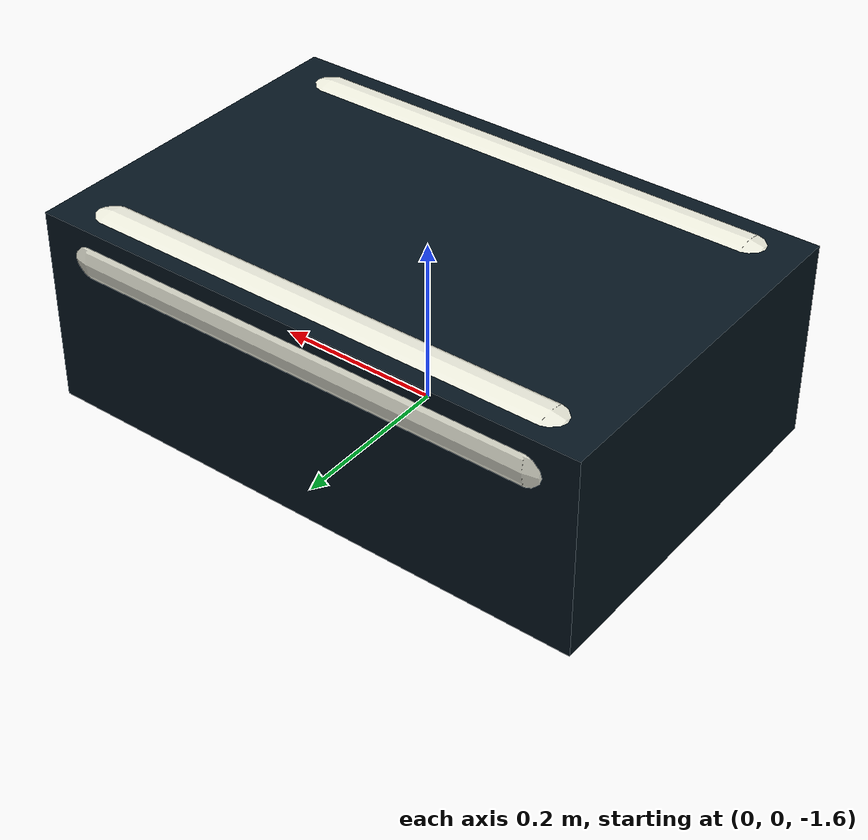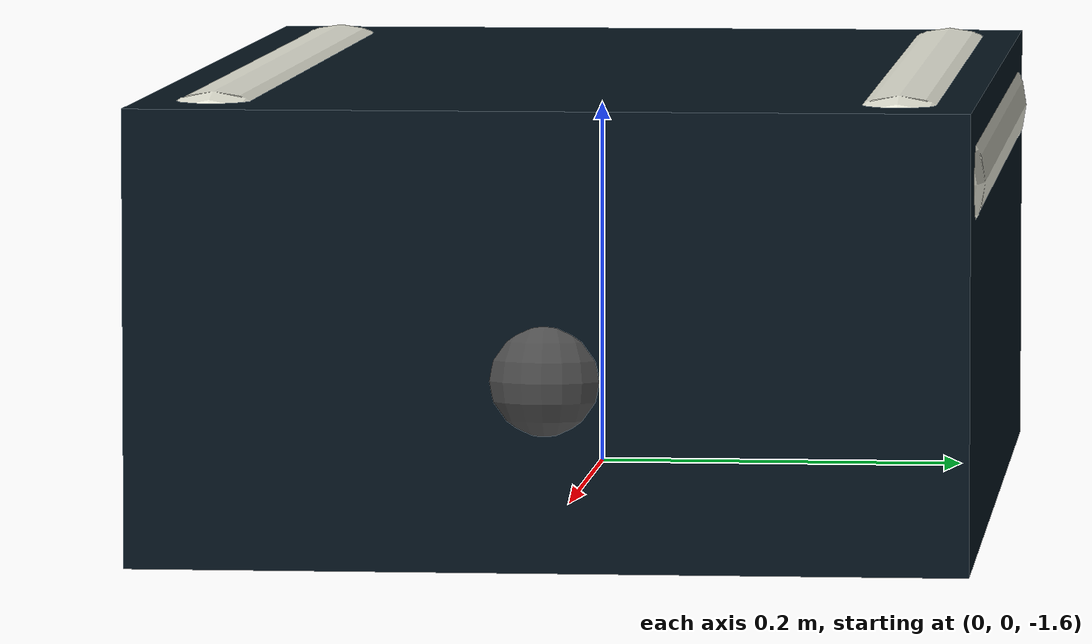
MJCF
<mujoco model="bluerov2_heavy_generic">
  <compiler angle="degree" coordinate="local"/>
  <option timestep="0.002" gravity="0 0 -9.81"/>

  <worldbody>
    <light name="top" pos="0 0 2"/>
    <geom name="water_plane" type="plane" size="5 5 0.01" pos="0 0 0" rgba="0.05 0.15 0.20 0.25"/>
    <body name="trajectory_target_marker" mocap="true" pos="0 0 -1.5">
      <geom name="trajectory_target_marker_geom" type="sphere" size="0.055" rgba="0.10 0.42 1.00 0.85" contype="0" conaffinity="0"/>
    </body>
    <body name="trajectory_actual_marker" mocap="true" pos="0 0 -1.5">
      <geom name="trajectory_actual_marker_geom" type="sphere" size="0.045" rgba="1.00 0.55 0.15 0.85" contype="0" conaffinity="0"/>
    </body>
    <!-- ROS-driven mocap dots: blue target trail, orange actual trail. -->
    <body name="trajectory_target_trail_00" mocap="true" pos="0 0 -1.5"><geom type="sphere" size="0.018" rgba="0.10 0.42 1.00 0.30" contype="0" conaffinity="0"/></body>
    <body name="trajectory_target_trail_01" mocap="true" pos="0 0 -1.5"><geom type="sphere" size="0.018" rgba="0.10 0.42 1.00 0.30" contype="0" conaffinity="0"/></body>
    <body name="trajectory_target_trail_02" mocap="true" pos="0 0 -1.5"><geom type="sphere" size="0.018" rgba="0.10 0.42 1.00 0.30" contype="0" conaffinity="0"/></body>
    <body name="trajectory_target_trail_03" mocap="true" pos="0 0 -1.5"><geom type="sphere" size="0.018" rgba="0.10 0.42 1.00 0.30" contype="0" conaffinity="0"/></body>
    <body name="trajectory_target_trail_04" mocap="true" pos="0 0 -1.5"><geom type="sphere" size="0.018" rgba="0.10 0.42 1.00 0.30" contype="0" conaffinity="0"/></body>
    <body name="trajectory_target_trail_05" mocap="true" pos="0 0 -1.5"><geom type="sphere" size="0.018" rgba="0.10 0.42 1.00 0.30" contype="0" conaffinity="0"/></body>
    <body name="trajectory_target_trail_06" mocap="true" pos="0 0 -1.5"><geom type="sphere" size="0.018" rgba="0.10 0.42 1.00 0.30" contype="0" conaffinity="0"/></body>
    <body name="trajectory_target_trail_07" mocap="true" pos="0 0 -1.5"><geom type="sphere" size="0.018" rgba="0.10 0.42 1.00 0.30" contype="0" conaffinity="0"/></body>
    <body name="trajectory_target_trail_08" mocap="true" pos="0 0 -1.5"><geom type="sphere" size="0.018" rgba="0.10 0.42 1.00 0.30" contype="0" conaffinity="0"/></body>
    <body name="trajectory_target_trail_09" mocap="true" pos="0 0 -1.5"><geom type="sphere" size="0.018" rgba="0.10 0.42 1.00 0.30" contype="0" conaffinity="0"/></body>
    <body name="trajectory_target_trail_10" mocap="true" pos="0 0 -1.5"><geom type="sphere" size="0.018" rgba="0.10 0.42 1.00 0.30" contype="0" conaffinity="0"/></body>
    <body name="trajectory_target_trail_11" mocap="true" pos="0 0 -1.5"><geom type="sphere" size="0.018" rgba="0.10 0.42 1.00 0.30" contype="0" conaffinity="0"/></body>
    <body name="trajectory_actual_trail_00" mocap="true" pos="0 0 -1.5"><geom type="sphere" size="0.018" rgba="1.00 0.55 0.15 0.30" contype="0" conaffinity="0"/></body>
    <body name="trajectory_actual_trail_01" mocap="true" pos="0 0 -1.5"><geom type="sphere" size="0.018" rgba="1.00 0.55 0.15 0.30" contype="0" conaffinity="0"/></body>
    <body name="trajectory_actual_trail_02" mocap="true" pos="0 0 -1.5"><geom type="sphere" size="0.018" rgba="1.00 0.55 0.15 0.30" contype="0" conaffinity="0"/></body>
    <body name="trajectory_actual_trail_03" mocap="true" pos="0 0 -1.5"><geom type="sphere" size="0.018" rgba="1.00 0.55 0.15 0.30" contype="0" conaffinity="0"/></body>
    <body name="trajectory_actual_trail_04" mocap="true" pos="0 0 -1.5"><geom type="sphere" size="0.018" rgba="1.00 0.55 0.15 0.30" contype="0" conaffinity="0"/></body>
    <body name="trajectory_actual_trail_05" mocap="true" pos="0 0 -1.5"><geom type="sphere" size="0.018" rgba="1.00 0.55 0.15 0.30" contype="0" conaffinity="0"/></body>
    <body name="trajectory_actual_trail_06" mocap="true" pos="0 0 -1.5"><geom type="sphere" size="0.018" rgba="1.00 0.55 0.15 0.30" contype="0" conaffinity="0"/></body>
    <body name="trajectory_actual_trail_07" mocap="true" pos="0 0 -1.5"><geom type="sphere" size="0.018" rgba="1.00 0.55 0.15 0.30" contype="0" conaffinity="0"/></body>
    <body name="trajectory_actual_trail_08" mocap="true" pos="0 0 -1.5"><geom type="sphere" size="0.018" rgba="1.00 0.55 0.15 0.30" contype="0" conaffinity="0"/></body>
    <body name="trajectory_actual_trail_09" mocap="true" pos="0 0 -1.5"><geom type="sphere" size="0.018" rgba="1.00 0.55 0.15 0.30" contype="0" conaffinity="0"/></body>
    <body name="trajectory_actual_trail_10" mocap="true" pos="0 0 -1.5"><geom type="sphere" size="0.018" rgba="1.00 0.55 0.15 0.30" contype="0" conaffinity="0"/></body>
    <body name="trajectory_actual_trail_11" mocap="true" pos="0 0 -1.5"><geom type="sphere" size="0.018" rgba="1.00 0.55 0.15 0.30" contype="0" conaffinity="0"/></body>
    <body name="base_link" pos="0 0 -1.5">
      <freejoint/>
      <geom name="hull" type="box" size="0.34 0.22 0.12" mass="14" rgba="0.02 0.08 0.12 1"/>
      <geom name="float_left" type="capsule" fromto="-0.28 0.18 0.08 0.28 0.18 0.08" size="0.045" mass="0.8" rgba="0.92 0.92 0.86 1"/>
      <geom name="float_right" type="capsule" fromto="-0.28 -0.18 0.08 0.28 -0.18 0.08" size="0.045" mass="0.8" rgba="0.92 0.92 0.86 1"/>

      <site name="thruster_0" pos="0.23 0.16 0.02" zaxis="0 0 1" size="0.025" rgba="0.2 0.6 1 1"/>
      <site name="thruster_1" pos="0.23 -0.16 0.02" zaxis="0 0 1" size="0.025" rgba="0.2 0.6 1 1"/>
      <site name="thruster_2" pos="-0.23 0.16 0.02" zaxis="0 0 1" size="0.025" rgba="0.2 0.6 1 1"/>
      <site name="thruster_3" pos="-0.23 -0.16 0.02" zaxis="0 0 1" size="0.025" rgba="0.2 0.6 1 1"/>
      <site name="thruster_4" pos="0.22 0.17 -0.04" zaxis="1 0 0" size="0.025" rgba="1 0.4 0.2 1"/>
      <site name="thruster_5" pos="0.22 -0.17 -0.04" zaxis="1 0 0" size="0.025" rgba="1 0.4 0.2 1"/>
      <site name="thruster_6" pos="-0.22 0.17 -0.04" zaxis="1 0 0" size="0.025" rgba="1 0.4 0.2 1"/>
      <site name="thruster_7" pos="-0.22 -0.17 -0.04" zaxis="1 0 0" size="0.025" rgba="1 0.4 0.2 1"/>
      <camera name="front_camera" pos="0.38 0 -0.02" euler="0 -10 0" fovy="70"/>

      <body name="generic_6dof_arm_mount" pos="0.32 0 -0.02">
        <geom type="sphere" size="0.035" mass="0.2" rgba="0.3 0.3 0.3 1"/>
      </body>
    </body>
  </worldbody>

  <actuator>
    <motor name="thruster_0" site="thruster_0" gear="0 0 1 0 0 0" ctrlrange="-160 160"/>
    <motor name="thruster_1" site="thruster_1" gear="0 0 1 0 0 0" ctrlrange="-160 160"/>
    <motor name="thruster_2" site="thruster_2" gear="0 0 1 0 0 0" ctrlrange="-160 160"/>
    <motor name="thruster_3" site="thruster_3" gear="0 0 1 0 0 0" ctrlrange="-160 160"/>
    <motor name="thruster_4" site="thruster_4" gear="1 0 0 0 0 0" ctrlrange="-160 160"/>
    <motor name="thruster_5" site="thruster_5" gear="1 0 0 0 0 0" ctrlrange="-160 160"/>
    <motor name="thruster_6" site="thruster_6" gear="1 0 0 0 0 0" ctrlrange="-160 160"/>
    <motor name="thruster_7" site="thruster_7" gear="1 0 0 0 0 0" ctrlrange="-160 160"/>
  </actuator>
</mujoco>
